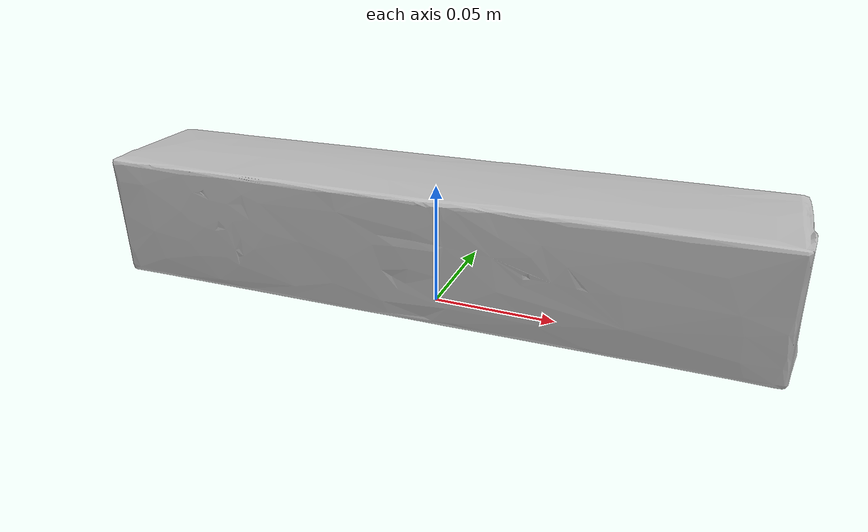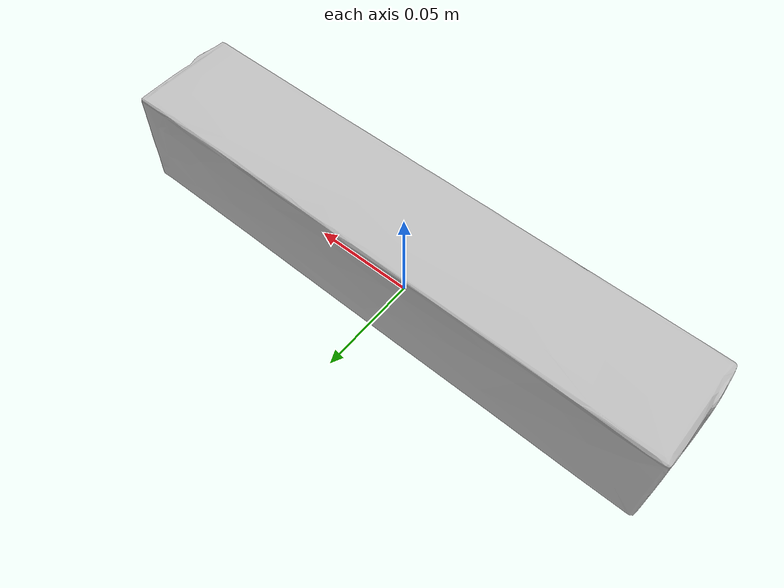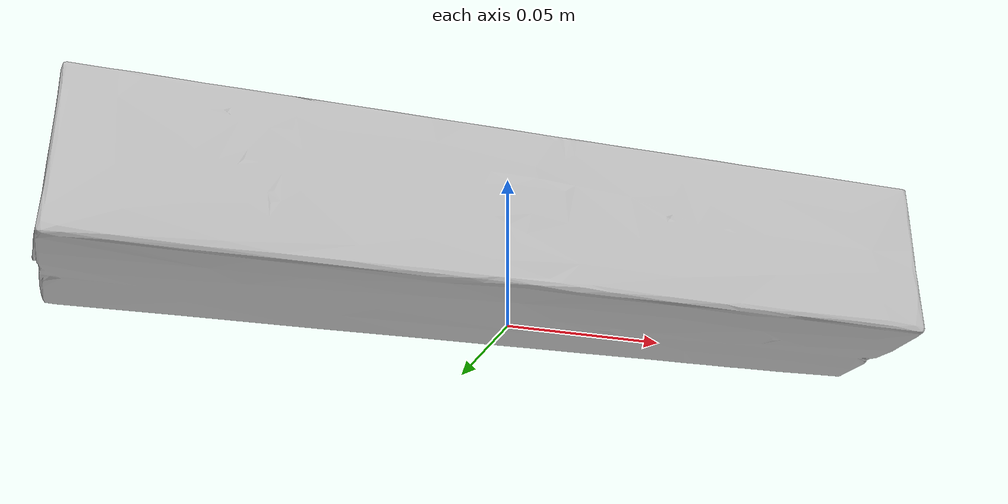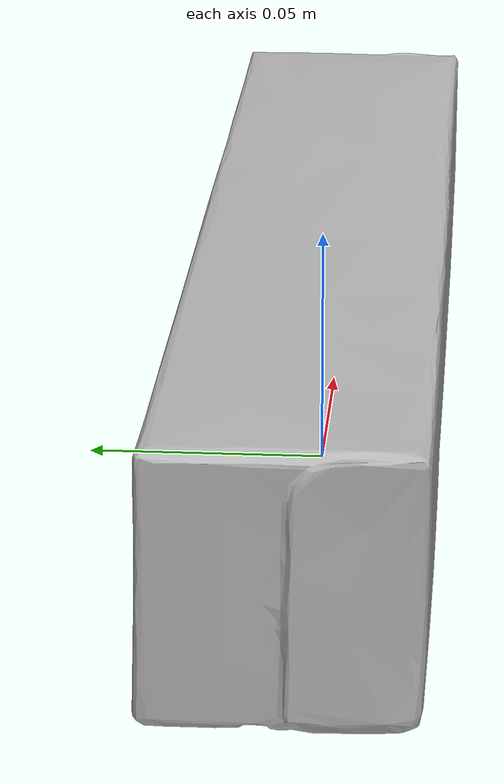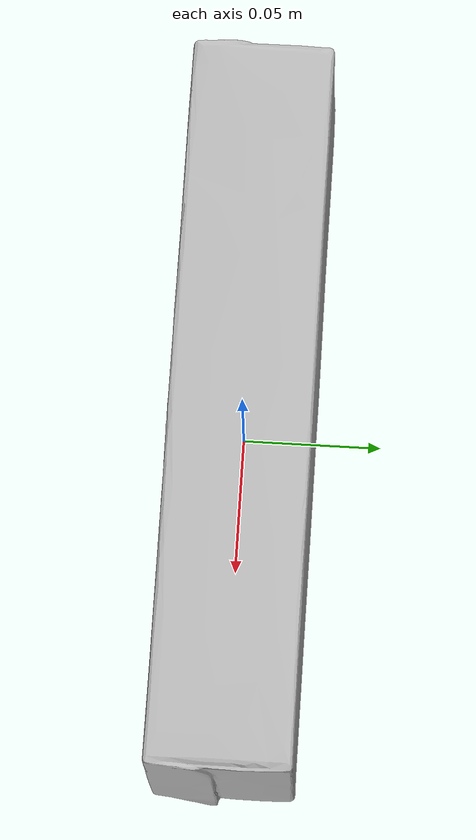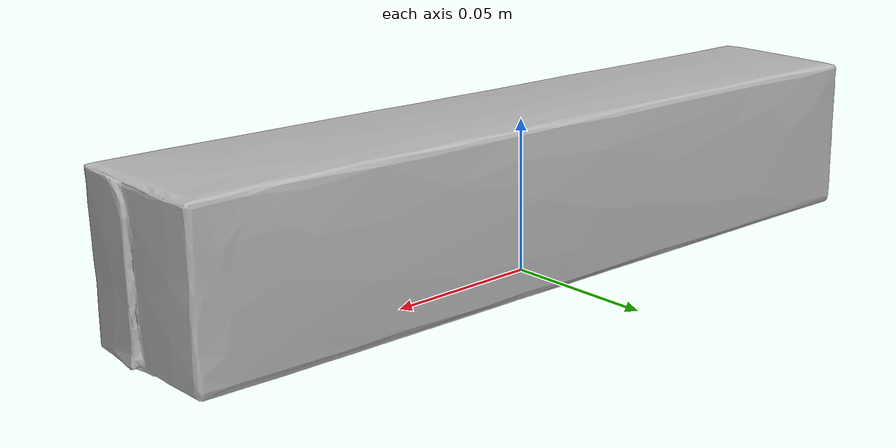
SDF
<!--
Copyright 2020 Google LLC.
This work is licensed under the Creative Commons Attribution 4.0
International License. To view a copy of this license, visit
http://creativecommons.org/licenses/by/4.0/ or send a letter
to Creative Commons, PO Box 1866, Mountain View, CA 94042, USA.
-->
<?xml version="1.0" ?>
<sdf version="1.6">
   <model name='Wilton_PreCut_Parchment_Sheets_10_x_15_24_sheets'>
      <link name='link_0'>
        <visual name='visual'>
          <geometry>
            <mesh>
              <uri>meshes/model.obj</uri>
            </mesh>
          </geometry>
        </visual>
        <collision name='collision_0'>
          <geometry>
            <mesh>
              <uri>meshes/model.obj</uri>
            </mesh>
          </geometry>
        </collision>
        <pose>0 0 0 0 0 0</pose>
        <inertial>
          <pose>0 0 0 0 0 0</pose>
          <mass>1</mass>
          <inertia>
            <ixx>1</ixx>
            <ixy>0</ixy>
            <ixz>0</ixz>
            <iyy>1</iyy>
            <iyz>0</iyz>
            <izz>1</izz>
          </inertia>
        </inertial>
        <enable_wind>false</enable_wind>
      </link>
      <static>false</static>
      <self_collide>false</self_collide>
    </model>
</sdf>
